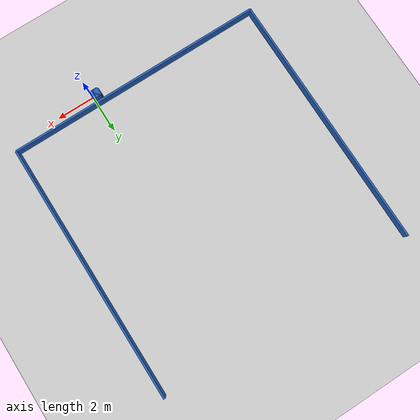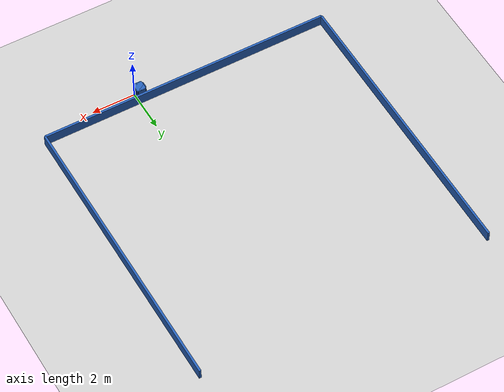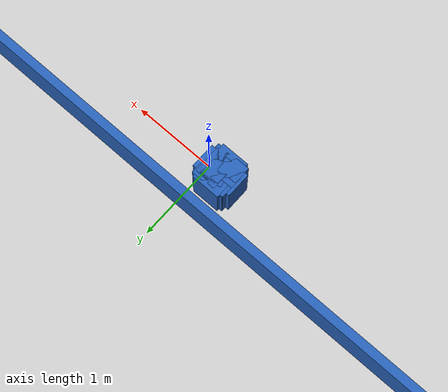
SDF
<?xml version="1.0" ?>
    <sdf version="1.5">
      <world name="default">
        <!-- A global light source -->
        <include>
          <uri>model://sun</uri>
        </include>
        <!-- A ground plane -->
        <include>
          <uri>model://ground_plane</uri>
        </include>

    <model name='libopen_space_final_T2B_94_31'>
      <static>1</static>
      <pose frame=''>-0.225000 0.075000 0.000000 0.000000 0.000000 0.000000</pose>
      <link name='link'>
        <inertial>
          <mass>1</mass>
          <inertia>
            <ixx>0.145833</ixx>
            <ixy>0</ixy>
            <ixz>0</ixz>
            <iyy>0.145833</iyy>
            <iyz>0</iyz>
            <izz>0.125</izz>
          </inertia>
        </inertial>
        <collision name='collision'>
          <geometry>
            <box>
              <size>0.15 0.26 1</size>
            </box>
          </geometry>
          <max_contacts>10</max_contacts>
          <surface>
            <contact>
              <ode/>
            </contact>
            <bounce/>
            <friction>
              <torsional>
                <ode/>
              </torsional>
              <ode/>
            </friction>
          </surface>
        </collision>
        <visual name='visual'>
          <geometry>
            <box>
              <size>0.15 0.26 1</size>
            </box>
          </geometry>
	    <material>
              <ambient>0.152000 0.379000 0.720000 1</ambient>
	      <diffuse>0.152000 0.379000 0.720000 1</diffuse>
          </material>
          <material>
            <script>
              <name>Gazebo/Grey</name>
              <uri>file://media/materials/scripts/gazebo.material</uri>
            </script>
          </material>
        </visual>
        <self_collide>0</self_collide>
        <kinematic>0</kinematic>
        <gravity>1</gravity>
      </link>
      <plugin name='libopen_space_final_T2B_94_31' filename='libopen_space_final_T2B_94_31.so'/>
    </model>

    <model name='libopen_space_final_T2B_51_63'>
      <static>1</static>
      <pose frame=''>-0.225000 0.075000 0.000000 0.000000 0.000000 0.000000</pose>
      <link name='link'>
        <inertial>
          <mass>1</mass>
          <inertia>
            <ixx>0.145833</ixx>
            <ixy>0</ixy>
            <ixz>0</ixz>
            <iyy>0.145833</iyy>
            <iyz>0</iyz>
            <izz>0.125</izz>
          </inertia>
        </inertial>
        <collision name='collision'>
          <geometry>
            <box>
              <size>0.34 0.48 1</size>
            </box>
          </geometry>
          <max_contacts>10</max_contacts>
          <surface>
            <contact>
              <ode/>
            </contact>
            <bounce/>
            <friction>
              <torsional>
                <ode/>
              </torsional>
              <ode/>
            </friction>
          </surface>
        </collision>
        <visual name='visual'>
          <geometry>
            <box>
              <size>0.34 0.48 1</size>
            </box>
          </geometry>
	    <material>
              <ambient>0.152000 0.379000 0.720000 1</ambient>
	      <diffuse>0.152000 0.379000 0.720000 1</diffuse>
          </material>
          <material>
            <script>
              <name>Gazebo/Grey</name>
              <uri>file://media/materials/scripts/gazebo.material</uri>
            </script>
          </material>
        </visual>
        <self_collide>0</self_collide>
        <kinematic>0</kinematic>
        <gravity>1</gravity>
      </link>
      <plugin name='libopen_space_final_T2B_51_63' filename='libopen_space_final_T2B_51_63.so'/>
    </model>

    <model name='libopen_space_final_T2B_112_28'>
      <static>1</static>
      <pose frame=''>-0.225000 0.075000 0.000000 0.000000 0.000000 0.000000</pose>
      <link name='link'>
        <inertial>
          <mass>1</mass>
          <inertia>
            <ixx>0.145833</ixx>
            <ixy>0</ixy>
            <ixz>0</ixz>
            <iyy>0.145833</iyy>
            <iyz>0</iyz>
            <izz>0.125</izz>
          </inertia>
        </inertial>
        <collision name='collision'>
          <geometry>
            <box>
              <size>0.27 0.29 1</size>
            </box>
          </geometry>
          <max_contacts>10</max_contacts>
          <surface>
            <contact>
              <ode/>
            </contact>
            <bounce/>
            <friction>
              <torsional>
                <ode/>
              </torsional>
              <ode/>
            </friction>
          </surface>
        </collision>
        <visual name='visual'>
          <geometry>
            <box>
              <size>0.27 0.29 1</size>
            </box>
          </geometry>
	    <material>
              <ambient>0.152000 0.379000 0.720000 1</ambient>
	      <diffuse>0.152000 0.379000 0.720000 1</diffuse>
          </material>
          <material>
            <script>
              <name>Gazebo/Grey</name>
              <uri>file://media/materials/scripts/gazebo.material</uri>
            </script>
          </material>
        </visual>
        <self_collide>0</self_collide>
        <kinematic>0</kinematic>
        <gravity>1</gravity>
      </link>
      <plugin name='libopen_space_final_T2B_112_28' filename='libopen_space_final_T2B_112_28.so'/>
    </model>

    <model name='libopen_space_final_T2B_83_66'>
      <static>1</static>
      <pose frame=''>-0.225000 0.075000 0.000000 0.000000 0.000000 0.000000</pose>
      <link name='link'>
        <inertial>
          <mass>1</mass>
          <inertia>
            <ixx>0.145833</ixx>
            <ixy>0</ixy>
            <ixz>0</ixz>
            <iyy>0.145833</iyy>
            <iyz>0</iyz>
            <izz>0.125</izz>
          </inertia>
        </inertial>
        <collision name='collision'>
          <geometry>
            <box>
              <size>0.42 0.30 1</size>
            </box>
          </geometry>
          <max_contacts>10</max_contacts>
          <surface>
            <contact>
              <ode/>
            </contact>
            <bounce/>
            <friction>
              <torsional>
                <ode/>
              </torsional>
              <ode/>
            </friction>
          </surface>
        </collision>
        <visual name='visual'>
          <geometry>
            <box>
              <size>0.42 0.30 1</size>
            </box>
          </geometry>
	    <material>
              <ambient>0.152000 0.379000 0.720000 1</ambient>
	      <diffuse>0.152000 0.379000 0.720000 1</diffuse>
          </material>
          <material>
            <script>
              <name>Gazebo/Grey</name>
              <uri>file://media/materials/scripts/gazebo.material</uri>
            </script>
          </material>
        </visual>
        <self_collide>0</self_collide>
        <kinematic>0</kinematic>
        <gravity>1</gravity>
      </link>
      <plugin name='libopen_space_final_T2B_83_66' filename='libopen_space_final_T2B_83_66.so'/>
    </model>

    <model name='libopen_space_final_T2B_55_44'>
      <static>1</static>
      <pose frame=''>-0.225000 0.075000 0.000000 0.000000 0.000000 0.000000</pose>
      <link name='link'>
        <inertial>
          <mass>1</mass>
          <inertia>
            <ixx>0.145833</ixx>
            <ixy>0</ixy>
            <ixz>0</ixz>
            <iyy>0.145833</iyy>
            <iyz>0</iyz>
            <izz>0.125</izz>
          </inertia>
        </inertial>
        <collision name='collision'>
          <geometry>
            <box>
              <size>0.41 0.42 1</size>
            </box>
          </geometry>
          <max_contacts>10</max_contacts>
          <surface>
            <contact>
              <ode/>
            </contact>
            <bounce/>
            <friction>
              <torsional>
                <ode/>
              </torsional>
              <ode/>
            </friction>
          </surface>
        </collision>
        <visual name='visual'>
          <geometry>
            <box>
              <size>0.41 0.42 1</size>
            </box>
          </geometry>
	    <material>
              <ambient>0.152000 0.379000 0.720000 1</ambient>
	      <diffuse>0.152000 0.379000 0.720000 1</diffuse>
          </material>
          <material>
            <script>
              <name>Gazebo/Grey</name>
              <uri>file://media/materials/scripts/gazebo.material</uri>
            </script>
          </material>
        </visual>
        <self_collide>0</self_collide>
        <kinematic>0</kinematic>
        <gravity>1</gravity>
      </link>
      <plugin name='libopen_space_final_T2B_55_44' filename='libopen_space_final_T2B_55_44.so'/>
    </model>

    <model name='libopen_space_final_T2B_56_75'>
      <static>1</static>
      <pose frame=''>-0.225000 0.075000 0.000000 0.000000 0.000000 0.000000</pose>
      <link name='link'>
        <inertial>
          <mass>1</mass>
          <inertia>
            <ixx>0.145833</ixx>
            <ixy>0</ixy>
            <ixz>0</ixz>
            <iyy>0.145833</iyy>
            <iyz>0</iyz>
            <izz>0.125</izz>
          </inertia>
        </inertial>
        <collision name='collision'>
          <geometry>
            <box>
              <size>0.13 0.33 1</size>
            </box>
          </geometry>
          <max_contacts>10</max_contacts>
          <surface>
            <contact>
              <ode/>
            </contact>
            <bounce/>
            <friction>
              <torsional>
                <ode/>
              </torsional>
              <ode/>
            </friction>
          </surface>
        </collision>
        <visual name='visual'>
          <geometry>
            <box>
              <size>0.13 0.33 1</size>
            </box>
          </geometry>
	    <material>
              <ambient>0.152000 0.379000 0.720000 1</ambient>
	      <diffuse>0.152000 0.379000 0.720000 1</diffuse>
          </material>
          <material>
            <script>
              <name>Gazebo/Grey</name>
              <uri>file://media/materials/scripts/gazebo.material</uri>
            </script>
          </material>
        </visual>
        <self_collide>0</self_collide>
        <kinematic>0</kinematic>
        <gravity>1</gravity>
      </link>
      <plugin name='libopen_space_final_T2B_56_75' filename='libopen_space_final_T2B_56_75.so'/>
    </model>

    <model name='libopen_space_final_T2B_83_61'>
      <static>1</static>
      <pose frame=''>-0.225000 0.075000 0.000000 0.000000 0.000000 0.000000</pose>
      <link name='link'>
        <inertial>
          <mass>1</mass>
          <inertia>
            <ixx>0.145833</ixx>
            <ixy>0</ixy>
            <ixz>0</ixz>
            <iyy>0.145833</iyy>
            <iyz>0</iyz>
            <izz>0.125</izz>
          </inertia>
        </inertial>
        <collision name='collision'>
          <geometry>
            <box>
              <size>0.38 0.34 1</size>
            </box>
          </geometry>
          <max_contacts>10</max_contacts>
          <surface>
            <contact>
              <ode/>
            </contact>
            <bounce/>
            <friction>
              <torsional>
                <ode/>
              </torsional>
              <ode/>
            </friction>
          </surface>
        </collision>
        <visual name='visual'>
          <geometry>
            <box>
              <size>0.38 0.34 1</size>
            </box>
          </geometry>
	    <material>
              <ambient>0.152000 0.379000 0.720000 1</ambient>
	      <diffuse>0.152000 0.379000 0.720000 1</diffuse>
          </material>
          <material>
            <script>
              <name>Gazebo/Grey</name>
              <uri>file://media/materials/scripts/gazebo.material</uri>
            </script>
          </material>
        </visual>
        <self_collide>0</self_collide>
        <kinematic>0</kinematic>
        <gravity>1</gravity>
      </link>
      <plugin name='libopen_space_final_T2B_83_61' filename='libopen_space_final_T2B_83_61.so'/>
    </model>

    <model name='libopen_space_final_T2B_80_70'>
      <static>1</static>
      <pose frame=''>-0.225000 0.075000 0.000000 0.000000 0.000000 0.000000</pose>
      <link name='link'>
        <inertial>
          <mass>1</mass>
          <inertia>
            <ixx>0.145833</ixx>
            <ixy>0</ixy>
            <ixz>0</ixz>
            <iyy>0.145833</iyy>
            <iyz>0</iyz>
            <izz>0.125</izz>
          </inertia>
        </inertial>
        <collision name='collision'>
          <geometry>
            <box>
              <size>0.25 0.14 1</size>
            </box>
          </geometry>
          <max_contacts>10</max_contacts>
          <surface>
            <contact>
              <ode/>
            </contact>
            <bounce/>
            <friction>
              <torsional>
                <ode/>
              </torsional>
              <ode/>
            </friction>
          </surface>
        </collision>
        <visual name='visual'>
          <geometry>
            <box>
              <size>0.25 0.14 1</size>
            </box>
          </geometry>
	    <material>
              <ambient>0.152000 0.379000 0.720000 1</ambient>
	      <diffuse>0.152000 0.379000 0.720000 1</diffuse>
          </material>
          <material>
            <script>
              <name>Gazebo/Grey</name>
              <uri>file://media/materials/scripts/gazebo.material</uri>
            </script>
          </material>
        </visual>
        <self_collide>0</self_collide>
        <kinematic>0</kinematic>
        <gravity>1</gravity>
      </link>
      <plugin name='libopen_space_final_T2B_80_70' filename='libopen_space_final_T2B_80_70.so'/>
    </model>

    <model name='libopen_space_final_T2B_90_7'>
      <static>1</static>
      <pose frame=''>-0.225000 0.075000 0.000000 0.000000 0.000000 0.000000</pose>
      <link name='link'>
        <inertial>
          <mass>1</mass>
          <inertia>
            <ixx>0.145833</ixx>
            <ixy>0</ixy>
            <ixz>0</ixz>
            <iyy>0.145833</iyy>
            <iyz>0</iyz>
            <izz>0.125</izz>
          </inertia>
        </inertial>
        <collision name='collision'>
          <geometry>
            <box>
              <size>0.43 0.14 1</size>
            </box>
          </geometry>
          <max_contacts>10</max_contacts>
          <surface>
            <contact>
              <ode/>
            </contact>
            <bounce/>
            <friction>
              <torsional>
                <ode/>
              </torsional>
              <ode/>
            </friction>
          </surface>
        </collision>
        <visual name='visual'>
          <geometry>
            <box>
              <size>0.43 0.14 1</size>
            </box>
          </geometry>
	    <material>
              <ambient>0.152000 0.379000 0.720000 1</ambient>
	      <diffuse>0.152000 0.379000 0.720000 1</diffuse>
          </material>
          <material>
            <script>
              <name>Gazebo/Grey</name>
              <uri>file://media/materials/scripts/gazebo.material</uri>
            </script>
          </material>
        </visual>
        <self_collide>0</self_collide>
        <kinematic>0</kinematic>
        <gravity>1</gravity>
      </link>
      <plugin name='libopen_space_final_T2B_90_7' filename='libopen_space_final_T2B_90_7.so'/>
    </model>

    <model name='libopen_space_final_T2B_126_41'>
      <static>1</static>
      <pose frame=''>-0.225000 0.075000 0.000000 0.000000 0.000000 0.000000</pose>
      <link name='link'>
        <inertial>
          <mass>1</mass>
          <inertia>
            <ixx>0.145833</ixx>
            <ixy>0</ixy>
            <ixz>0</ixz>
            <iyy>0.145833</iyy>
            <iyz>0</iyz>
            <izz>0.125</izz>
          </inertia>
        </inertial>
        <collision name='collision'>
          <geometry>
            <box>
              <size>0.16 0.39 1</size>
            </box>
          </geometry>
          <max_contacts>10</max_contacts>
          <surface>
            <contact>
              <ode/>
            </contact>
            <bounce/>
            <friction>
              <torsional>
                <ode/>
              </torsional>
              <ode/>
            </friction>
          </surface>
        </collision>
        <visual name='visual'>
          <geometry>
            <box>
              <size>0.16 0.39 1</size>
            </box>
          </geometry>
	    <material>
              <ambient>0.152000 0.379000 0.720000 1</ambient>
	      <diffuse>0.152000 0.379000 0.720000 1</diffuse>
          </material>
          <material>
            <script>
              <name>Gazebo/Grey</name>
              <uri>file://media/materials/scripts/gazebo.material</uri>
            </script>
          </material>
        </visual>
        <self_collide>0</self_collide>
        <kinematic>0</kinematic>
        <gravity>1</gravity>
      </link>
      <plugin name='libopen_space_final_T2B_126_41' filename='libopen_space_final_T2B_126_41.so'/>
    </model>

    <model name='libopen_space_final_T2B_129_21'>
      <static>1</static>
      <pose frame=''>-0.225000 0.075000 0.000000 0.000000 0.000000 0.000000</pose>
      <link name='link'>
        <inertial>
          <mass>1</mass>
          <inertia>
            <ixx>0.145833</ixx>
            <ixy>0</ixy>
            <ixz>0</ixz>
            <iyy>0.145833</iyy>
            <iyz>0</iyz>
            <izz>0.125</izz>
          </inertia>
        </inertial>
        <collision name='collision'>
          <geometry>
            <box>
              <size>0.42 0.41 1</size>
            </box>
          </geometry>
          <max_contacts>10</max_contacts>
          <surface>
            <contact>
              <ode/>
            </contact>
            <bounce/>
            <friction>
              <torsional>
                <ode/>
              </torsional>
              <ode/>
            </friction>
          </surface>
        </collision>
        <visual name='visual'>
          <geometry>
            <box>
              <size>0.42 0.41 1</size>
            </box>
          </geometry>
	    <material>
              <ambient>0.152000 0.379000 0.720000 1</ambient>
	      <diffuse>0.152000 0.379000 0.720000 1</diffuse>
          </material>
          <material>
            <script>
              <name>Gazebo/Grey</name>
              <uri>file://media/materials/scripts/gazebo.material</uri>
            </script>
          </material>
        </visual>
        <self_collide>0</self_collide>
        <kinematic>0</kinematic>
        <gravity>1</gravity>
      </link>
      <plugin name='libopen_space_final_T2B_129_21' filename='libopen_space_final_T2B_129_21.so'/>
    </model>

    <model name='libopen_space_final_T2B_73_9'>
      <static>1</static>
      <pose frame=''>-0.225000 0.075000 0.000000 0.000000 0.000000 0.000000</pose>
      <link name='link'>
        <inertial>
          <mass>1</mass>
          <inertia>
            <ixx>0.145833</ixx>
            <ixy>0</ixy>
            <ixz>0</ixz>
            <iyy>0.145833</iyy>
            <iyz>0</iyz>
            <izz>0.125</izz>
          </inertia>
        </inertial>
        <collision name='collision'>
          <geometry>
            <box>
              <size>0.50 0.30 1</size>
            </box>
          </geometry>
          <max_contacts>10</max_contacts>
          <surface>
            <contact>
              <ode/>
            </contact>
            <bounce/>
            <friction>
              <torsional>
                <ode/>
              </torsional>
              <ode/>
            </friction>
          </surface>
        </collision>
        <visual name='visual'>
          <geometry>
            <box>
              <size>0.50 0.30 1</size>
            </box>
          </geometry>
	    <material>
              <ambient>0.152000 0.379000 0.720000 1</ambient>
	      <diffuse>0.152000 0.379000 0.720000 1</diffuse>
          </material>
          <material>
            <script>
              <name>Gazebo/Grey</name>
              <uri>file://media/materials/scripts/gazebo.material</uri>
            </script>
          </material>
        </visual>
        <self_collide>0</self_collide>
        <kinematic>0</kinematic>
        <gravity>1</gravity>
      </link>
      <plugin name='libopen_space_final_T2B_73_9' filename='libopen_space_final_T2B_73_9.so'/>
    </model>

        <model name='bottom_wall'>
          <static>1</static>
          <pose frame=''>-2.25 0.5 0.000000 0.000000 0.000000 1.57079632</pose>
          <link name='link'>
            <inertial>
            <mass>1</mass>
            <inertia>
              <ixx>0.145833</ixx>
              <ixy>0</ixy>
              <ixz>0</ixz>
              <iyy>0.145833</iyy>
              <iyz>0</iyz>
              <izz>0.125</izz>
            </inertia>
            </inertial>
            <collision name='collision'>
            <geometry>
              <box>
              <size>0.1 13.5 1</size>
              </box>
            </geometry>
            <max_contacts>10</max_contacts>
            <surface>
              <contact>
              <ode/>
              </contact>
              <bounce/>
              <friction>
              <torsional>
                <ode/>
              </torsional>
              <ode/>
              </friction>
            </surface>
            </collision>
            <visual name='visual'>
            <geometry>
              <box>
              <size>0.1 13.5 1</size>
              </box>
            </geometry>
            <material>
              <ambient>0.152000 0.379000 0.720000 1</ambient>
            <diffuse>0.152000 0.379000 0.720000 1</diffuse>
            </material>
            <material>
              <script>
              <name>Gazebo/Grey</name>
              <uri>file://media/materials/scripts/gazebo.material</uri>
              </script>
            </material>
            </visual>
            <self_collide>0</self_collide>
            <kinematic>0</kinematic>
            <gravity>1</gravity>
          </link>
        </model>

        <model name='left_wall'>
          <static>1</static>
          <pose frame=''>-9 7.25 0.000000 0.000000 0.000000 0.000000</pose>
          <link name='link'>
            <inertial>
            <mass>1</mass>
            <inertia>
              <ixx>0.145833</ixx>
              <ixy>0</ixy>
              <ixz>0</ixz>
              <iyy>0.145833</iyy>
              <iyz>0</iyz>
              <izz>0.125</izz>
            </inertia>
            </inertial>
            <collision name='collision'>
            <geometry>
              <box>
              <size>0.1 13.5 1</size>
              </box>
            </geometry>
            <max_contacts>10</max_contacts>
            <surface>
              <contact>
              <ode/>
              </contact>
              <bounce/>
              <friction>
              <torsional>
                <ode/>
              </torsional>
              <ode/>
              </friction>
            </surface>
            </collision>
            <visual name='visual'>
            <geometry>
              <box>
              <size>0.1 13.5 1</size>
              </box>
            </geometry>
            <material>
              <ambient>0.152000 0.379000 0.720000 1</ambient>
            <diffuse>0.152000 0.379000 0.720000 1</diffuse>
            </material>
            <material>
              <script>
              <name>Gazebo/Grey</name>
              <uri>file://media/materials/scripts/gazebo.material</uri>
              </script>
            </material>
            </visual>
            <self_collide>0</self_collide>
            <kinematic>0</kinematic>
            <gravity>1</gravity>
          </link>
        </model>

        <model name='right_wall'>
          <static>1</static>
          <pose frame=''>4.5 7.25 0.000000 0.000000 0.000000 0.000000</pose>
          <link name='link'>
            <inertial>
            <mass>1</mass>
            <inertia>
              <ixx>0.145833</ixx>
              <ixy>0</ixy>
              <ixz>0</ixz>
              <iyy>0.145833</iyy>
              <iyz>0</iyz>
              <izz>0.125</izz>
            </inertia>
            </inertial>
            <collision name='collision'>
            <geometry>
              <box>
              <size>0.1 13.5 1</size>
              </box>
            </geometry>
            <max_contacts>10</max_contacts>
            <surface>
              <contact>
              <ode/>
              </contact>
              <bounce/>
              <friction>
              <torsional>
                <ode/>
              </torsional>
              <ode/>
              </friction>
            </surface>
            </collision>
            <visual name='visual'>
            <geometry>
              <box>
              <size>0.1 13.5 1</size>
              </box>
            </geometry>
            <material>
              <ambient>0.152000 0.379000 0.720000 1</ambient>
            <diffuse>0.152000 0.379000 0.720000 1</diffuse>
            </material>
            <material>
              <script>
              <name>Gazebo/Grey</name>
              <uri>file://media/materials/scripts/gazebo.material</uri>
              </script>
            </material>
            </visual>
            <self_collide>0</self_collide>
            <kinematic>0</kinematic>
            <gravity>1</gravity>
          </link>
        </model>

      </world>
    </sdf>"
